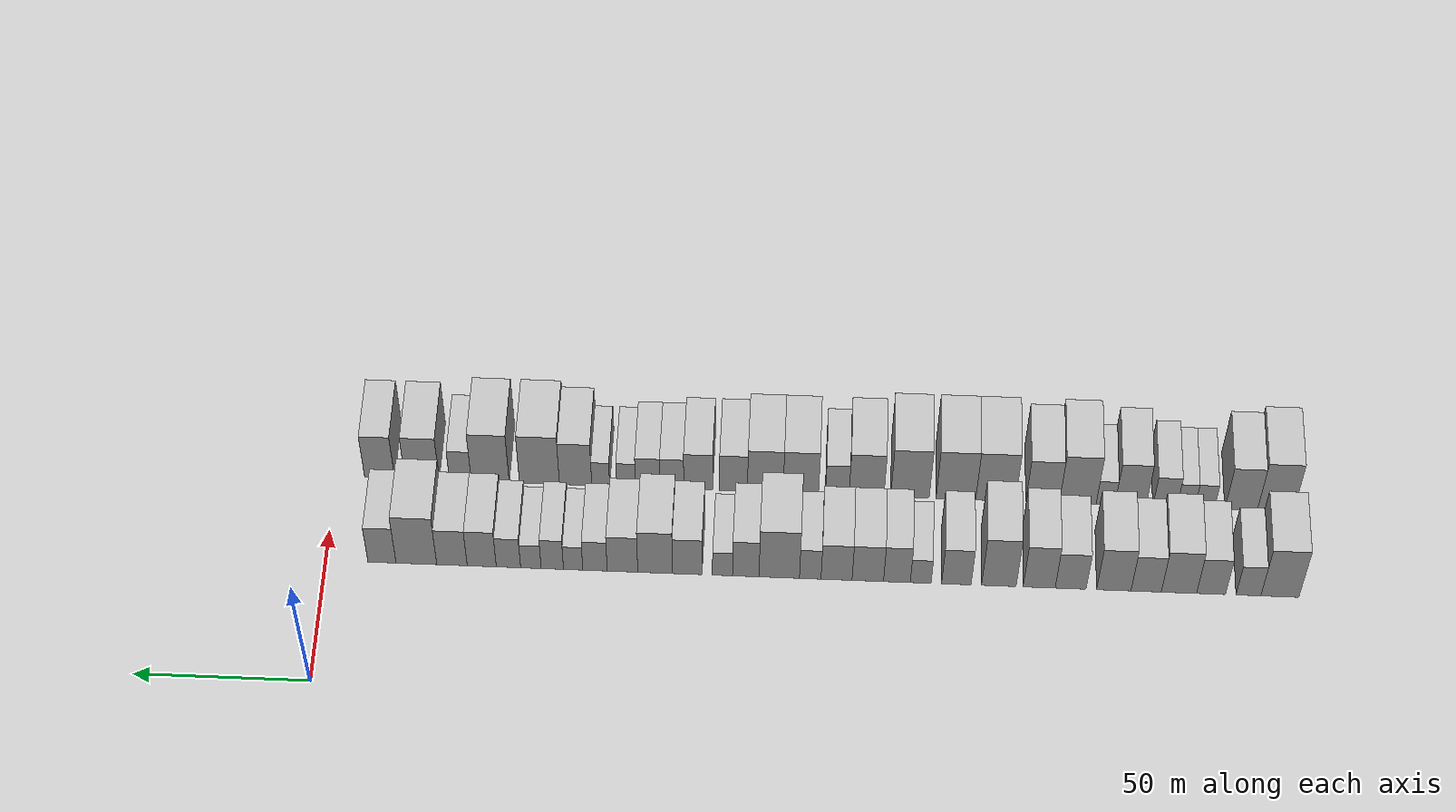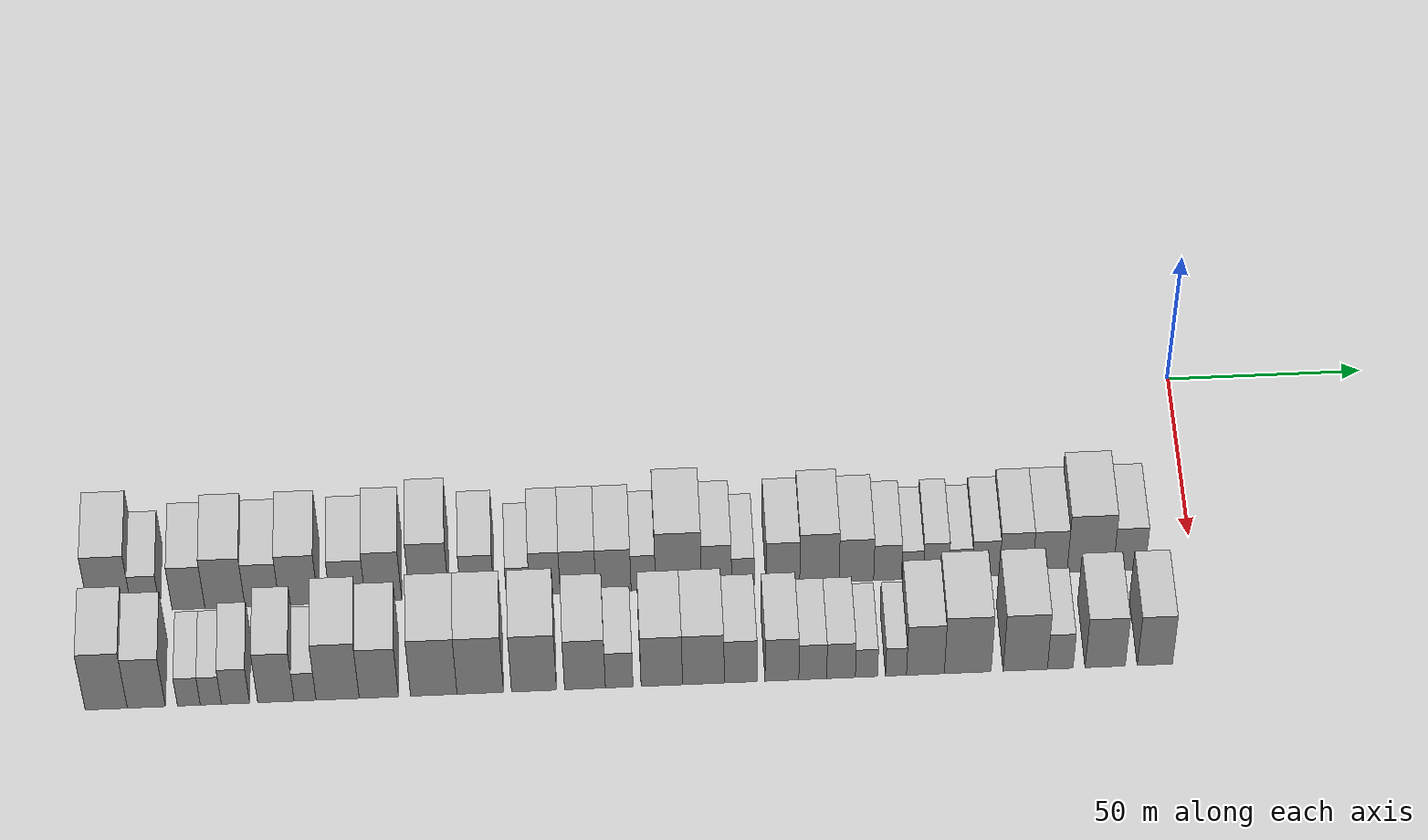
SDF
<sdf version="1.6">
 <world name="default">
  <model name="building_1">
   <static>1</static>
   <pose>50.0000 -272.6095 0 0.000000 0.000000 0.000000</pose>
   <link name="link">
    <pose>0 0 12.00 0 0 0</pose>
    <collision name="collision"><geometry><box><size>20.0000 10.7811 24.0000</size></box></geometry></collision>
    <visual name="visual">
     <cast_shadows>0</cast_shadows>
     <geometry><box><size>20.0000 10.7811 24.0000</size></box></geometry>
     <material>
      <script>
       <uri>model://HANNAS_wall/materials/scripts</uri>
       <uri>model://HANNAS_wall/materials/textures</uri>
       <name>vrc/HANNAS_wall</name>
      </script>
     </material>
    </visual>
   </link>
  </model>
  <model name="building_2">
   <static>1</static>
   <pose>50.0000 -263.6989 0 0.000000 0.000000 0.000000</pose>
   <link name="link">
    <pose>0 0 7.50 0 0 0</pose>
    <collision name="collision"><geometry><box><size>20.0000 7.0400 15.0000</size></box></geometry></collision>
    <visual name="visual">
     <cast_shadows>0</cast_shadows>
     <geometry><box><size>20.0000 7.0400 15.0000</size></box></geometry>
     <material>
      <script>
       <uri>model://HANNAS_wall/materials/scripts</uri>
       <uri>model://HANNAS_wall/materials/textures</uri>
       <name>vrc/HANNAS_wall</name>
      </script>
     </material>
    </visual>
   </link>
  </model>
  <model name="building_3">
   <static>1</static>
   <pose>50.0000 -253.0699 0 0.000000 0.000000 0.000000</pose>
   <link name="link">
    <pose>0 0 9.00 0 0 0</pose>
    <collision name="collision"><geometry><box><size>20.0000 8.2181 18.0000</size></box></geometry></collision>
    <visual name="visual">
     <cast_shadows>0</cast_shadows>
     <geometry><box><size>20.0000 8.2181 18.0000</size></box></geometry>
     <material>
      <script>
       <uri>model://HANNAS_wall/materials/scripts</uri>
       <uri>model://HANNAS_wall/materials/textures</uri>
       <name>vrc/HANNAS_wall</name>
      </script>
     </material>
    </visual>
   </link>
  </model>
  <model name="building_4">
   <static>1</static>
   <pose>50.0000 -243.9424 0 0.000000 0.000000 0.000000</pose>
   <link name="link">
    <pose>0 0 10.50 0 0 0</pose>
    <collision name="collision"><geometry><box><size>20.0000 10.0370 21.0000</size></box></geometry></collision>
    <visual name="visual">
     <cast_shadows>0</cast_shadows>
     <geometry><box><size>20.0000 10.0370 21.0000</size></box></geometry>
     <material>
      <script>
       <uri>model://HANNAS_wall/materials/scripts</uri>
       <uri>model://HANNAS_wall/materials/textures</uri>
       <name>vrc/HANNAS_wall</name>
      </script>
     </material>
    </visual>
   </link>
  </model>
  <model name="building_5">
   <static>1</static>
   <pose>50.0000 -234.6155 0 0.000000 0.000000 0.000000</pose>
   <link name="link">
    <pose>0 0 9.00 0 0 0</pose>
    <collision name="collision"><geometry><box><size>20.0000 8.6167 18.0000</size></box></geometry></collision>
    <visual name="visual">
     <cast_shadows>0</cast_shadows>
     <geometry><box><size>20.0000 8.6167 18.0000</size></box></geometry>
     <material>
      <script>
       <uri>model://HANNAS_wall/materials/scripts</uri>
       <uri>model://HANNAS_wall/materials/textures</uri>
       <name>vrc/HANNAS_wall</name>
      </script>
     </material>
    </visual>
   </link>
  </model>
  <model name="building_6">
   <static>1</static>
   <pose>50.0000 -225.4179 0 0.000000 0.000000 0.000000</pose>
   <link name="link">
    <pose>0 0 10.50 0 0 0</pose>
    <collision name="collision"><geometry><box><size>20.0000 9.7786 21.0000</size></box></geometry></collision>
    <visual name="visual">
     <cast_shadows>0</cast_shadows>
     <geometry><box><size>20.0000 9.7786 21.0000</size></box></geometry>
     <material>
      <script>
       <uri>model://HANNAS_wall/materials/scripts</uri>
       <uri>model://HANNAS_wall/materials/textures</uri>
       <name>vrc/HANNAS_wall</name>
      </script>
     </material>
    </visual>
   </link>
  </model>
  <model name="building_7">
   <static>1</static>
   <pose>50.0000 -213.1358 0 0.000000 0.000000 0.000000</pose>
   <link name="link">
    <pose>0 0 9.00 0 0 0</pose>
    <collision name="collision"><geometry><box><size>20.0000 8.7856 18.0000</size></box></geometry></collision>
    <visual name="visual">
     <cast_shadows>0</cast_shadows>
     <geometry><box><size>20.0000 8.7856 18.0000</size></box></geometry>
     <material>
      <script>
       <uri>model://HANNAS_wall/materials/scripts</uri>
       <uri>model://HANNAS_wall/materials/textures</uri>
       <name>vrc/HANNAS_wall</name>
      </script>
     </material>
    </visual>
   </link>
  </model>
  <model name="building_8">
   <static>1</static>
   <pose>50.0000 -204.1743 0 0.000000 0.000000 0.000000</pose>
   <link name="link">
    <pose>0 0 10.50 0 0 0</pose>
    <collision name="collision"><geometry><box><size>20.0000 9.1375 21.0000</size></box></geometry></collision>
    <visual name="visual">
     <cast_shadows>0</cast_shadows>
     <geometry><box><size>20.0000 9.1375 21.0000</size></box></geometry>
     <material>
      <script>
       <uri>model://HANNAS_wall/materials/scripts</uri>
       <uri>model://HANNAS_wall/materials/textures</uri>
       <name>vrc/HANNAS_wall</name>
      </script>
     </material>
    </visual>
   </link>
  </model>
  <model name="building_9">
   <static>1</static>
   <pose>50.0000 -192.6847 0 0.000000 0.000000 0.000000</pose>
   <link name="link">
    <pose>0 0 12.00 0 0 0</pose>
    <collision name="collision"><geometry><box><size>20.0000 9.8418 24.0000</size></box></geometry></collision>
    <visual name="visual">
     <cast_shadows>0</cast_shadows>
     <geometry><box><size>20.0000 9.8418 24.0000</size></box></geometry>
     <material>
      <script>
       <uri>model://HANNAS_wall/materials/scripts</uri>
       <uri>model://HANNAS_wall/materials/textures</uri>
       <name>vrc/HANNAS_wall</name>
      </script>
     </material>
    </visual>
   </link>
  </model>
  <model name="building_10">
   <static>1</static>
   <pose>50.0000 -180.5605 0 0.000000 0.000000 0.000000</pose>
   <link name="link">
    <pose>0 0 9.00 0 0 0</pose>
    <collision name="collision"><geometry><box><size>20.0000 8.4065 18.0000</size></box></geometry></collision>
    <visual name="visual">
     <cast_shadows>0</cast_shadows>
     <geometry><box><size>20.0000 8.4065 18.0000</size></box></geometry>
     <material>
      <script>
       <uri>model://HANNAS_wall/materials/scripts</uri>
       <uri>model://HANNAS_wall/materials/textures</uri>
       <name>vrc/HANNAS_wall</name>
      </script>
     </material>
    </visual>
   </link>
  </model>
  <model name="building_11">
   <static>1</static>
   <pose>50.0000 -170.3896 0 0.000000 0.000000 0.000000</pose>
   <link name="link">
    <pose>0 0 6.00 0 0 0</pose>
    <collision name="collision"><geometry><box><size>20.0000 5.9353 12.0000</size></box></geometry></collision>
    <visual name="visual">
     <cast_shadows>0</cast_shadows>
     <geometry><box><size>20.0000 5.9353 12.0000</size></box></geometry>
     <material>
      <script>
       <uri>model://HANNAS_wall/materials/scripts</uri>
       <uri>model://HANNAS_wall/materials/textures</uri>
       <name>vrc/HANNAS_wall</name>
      </script>
     </material>
    </visual>
   </link>
  </model>
  <model name="building_12">
   <static>1</static>
   <pose>50.0000 -163.6053 0 0.000000 0.000000 0.000000</pose>
   <link name="link">
    <pose>0 0 9.00 0 0 0</pose>
    <collision name="collision"><geometry><box><size>20.0000 7.6333 18.0000</size></box></geometry></collision>
    <visual name="visual">
     <cast_shadows>0</cast_shadows>
     <geometry><box><size>20.0000 7.6333 18.0000</size></box></geometry>
     <material>
      <script>
       <uri>model://HANNAS_wall/materials/scripts</uri>
       <uri>model://HANNAS_wall/materials/textures</uri>
       <name>vrc/HANNAS_wall</name>
      </script>
     </material>
    </visual>
   </link>
  </model>
  <model name="building_13">
   <static>1</static>
   <pose>50.0000 -155.2934 0 0.000000 0.000000 0.000000</pose>
   <link name="link">
    <pose>0 0 9.00 0 0 0</pose>
    <collision name="collision"><geometry><box><size>20.0000 8.9907 18.0000</size></box></geometry></collision>
    <visual name="visual">
     <cast_shadows>0</cast_shadows>
     <geometry><box><size>20.0000 8.9907 18.0000</size></box></geometry>
     <material>
      <script>
       <uri>model://HANNAS_wall/materials/scripts</uri>
       <uri>model://HANNAS_wall/materials/textures</uri>
       <name>vrc/HANNAS_wall</name>
      </script>
     </material>
    </visual>
   </link>
  </model>
  <model name="building_14">
   <static>1</static>
   <pose>50.0000 -146.3652 0 0.000000 0.000000 0.000000</pose>
   <link name="link">
    <pose>0 0 9.00 0 0 0</pose>
    <collision name="collision"><geometry><box><size>20.0000 8.8655 18.0000</size></box></geometry></collision>
    <visual name="visual">
     <cast_shadows>0</cast_shadows>
     <geometry><box><size>20.0000 8.8655 18.0000</size></box></geometry>
     <material>
      <script>
       <uri>model://HANNAS_wall/materials/scripts</uri>
       <uri>model://HANNAS_wall/materials/textures</uri>
       <name>vrc/HANNAS_wall</name>
      </script>
     </material>
    </visual>
   </link>
  </model>
  <model name="building_15">
   <static>1</static>
   <pose>50.0000 -138.8571 0 0.000000 0.000000 0.000000</pose>
   <link name="link">
    <pose>0 0 7.50 0 0 0</pose>
    <collision name="collision"><geometry><box><size>20.0000 6.1508 15.0000</size></box></geometry></collision>
    <visual name="visual">
     <cast_shadows>0</cast_shadows>
     <geometry><box><size>20.0000 6.1508 15.0000</size></box></geometry>
     <material>
      <script>
       <uri>model://HANNAS_wall/materials/scripts</uri>
       <uri>model://HANNAS_wall/materials/textures</uri>
       <name>vrc/HANNAS_wall</name>
      </script>
     </material>
    </visual>
   </link>
  </model>
  <model name="building_16">
   <static>1</static>
   <pose>50.0000 -130.0185 0 0.000000 0.000000 0.000000</pose>
   <link name="link">
    <pose>0 0 12.00 0 0 0</pose>
    <collision name="collision"><geometry><box><size>20.0000 11.5264 24.0000</size></box></geometry></collision>
    <visual name="visual">
     <cast_shadows>0</cast_shadows>
     <geometry><box><size>20.0000 11.5264 24.0000</size></box></geometry>
     <material>
      <script>
       <uri>model://HANNAS_wall/materials/scripts</uri>
       <uri>model://HANNAS_wall/materials/textures</uri>
       <name>vrc/HANNAS_wall</name>
      </script>
     </material>
    </visual>
   </link>
  </model>
  <model name="building_17">
   <static>1</static>
   <pose>50.0000 -120.4466 0 0.000000 0.000000 0.000000</pose>
   <link name="link">
    <pose>0 0 9.00 0 0 0</pose>
    <collision name="collision"><geometry><box><size>20.0000 7.6174 18.0000</size></box></geometry></collision>
    <visual name="visual">
     <cast_shadows>0</cast_shadows>
     <geometry><box><size>20.0000 7.6174 18.0000</size></box></geometry>
     <material>
      <script>
       <uri>model://HANNAS_wall/materials/scripts</uri>
       <uri>model://HANNAS_wall/materials/textures</uri>
       <name>vrc/HANNAS_wall</name>
      </script>
     </material>
    </visual>
   </link>
  </model>
  <model name="building_18">
   <static>1</static>
   <pose>50.0000 -113.7780 0 0.000000 0.000000 0.000000</pose>
   <link name="link">
    <pose>0 0 6.00 0 0 0</pose>
    <collision name="collision"><geometry><box><size>20.0000 5.7198 12.0000</size></box></geometry></collision>
    <visual name="visual">
     <cast_shadows>0</cast_shadows>
     <geometry><box><size>20.0000 5.7198 12.0000</size></box></geometry>
     <material>
      <script>
       <uri>model://HANNAS_wall/materials/scripts</uri>
       <uri>model://HANNAS_wall/materials/textures</uri>
       <name>vrc/HANNAS_wall</name>
      </script>
     </material>
    </visual>
   </link>
  </model>
  <model name="building_19">
   <static>1</static>
   <pose>50.0000 -103.6759 0 0.000000 0.000000 0.000000</pose>
   <link name="link">
    <pose>0 0 9.00 0 0 0</pose>
    <collision name="collision"><geometry><box><size>20.0000 8.4845 18.0000</size></box></geometry></collision>
    <visual name="visual">
     <cast_shadows>0</cast_shadows>
     <geometry><box><size>20.0000 8.4845 18.0000</size></box></geometry>
     <material>
      <script>
       <uri>model://HANNAS_wall/materials/scripts</uri>
       <uri>model://HANNAS_wall/materials/textures</uri>
       <name>vrc/HANNAS_wall</name>
      </script>
     </material>
    </visual>
   </link>
  </model>
  <model name="building_20">
   <static>1</static>
   <pose>50.0000 -94.4692 0 0.000000 0.000000 0.000000</pose>
   <link name="link">
    <pose>0 0 10.50 0 0 0</pose>
    <collision name="collision"><geometry><box><size>20.0000 9.9289 21.0000</size></box></geometry></collision>
    <visual name="visual">
     <cast_shadows>0</cast_shadows>
     <geometry><box><size>20.0000 9.9289 21.0000</size></box></geometry>
     <material>
      <script>
       <uri>model://HANNAS_wall/materials/scripts</uri>
       <uri>model://HANNAS_wall/materials/textures</uri>
       <name>vrc/HANNAS_wall</name>
      </script>
     </material>
    </visual>
   </link>
  </model>
  <model name="building_21">
   <static>1</static>
   <pose>50.0000 -85.1361 0 0.000000 0.000000 0.000000</pose>
   <link name="link">
    <pose>0 0 9.00 0 0 0</pose>
    <collision name="collision"><geometry><box><size>20.0000 8.7373 18.0000</size></box></geometry></collision>
    <visual name="visual">
     <cast_shadows>0</cast_shadows>
     <geometry><box><size>20.0000 8.7373 18.0000</size></box></geometry>
     <material>
      <script>
       <uri>model://HANNAS_wall/materials/scripts</uri>
       <uri>model://HANNAS_wall/materials/textures</uri>
       <name>vrc/HANNAS_wall</name>
      </script>
     </material>
    </visual>
   </link>
  </model>
  <model name="building_22">
   <static>1</static>
   <pose>50.0000 -77.2666 0 0.000000 0.000000 0.000000</pose>
   <link name="link">
    <pose>0 0 7.50 0 0 0</pose>
    <collision name="collision"><geometry><box><size>20.0000 7.0017 15.0000</size></box></geometry></collision>
    <visual name="visual">
     <cast_shadows>0</cast_shadows>
     <geometry><box><size>20.0000 7.0017 15.0000</size></box></geometry>
     <material>
      <script>
       <uri>model://HANNAS_wall/materials/scripts</uri>
       <uri>model://HANNAS_wall/materials/textures</uri>
       <name>vrc/HANNAS_wall</name>
      </script>
     </material>
    </visual>
   </link>
  </model>
  <model name="building_23">
   <static>1</static>
   <pose>50.0000 -71.0025 0 0.000000 0.000000 0.000000</pose>
   <link name="link">
    <pose>0 0 6.00 0 0 0</pose>
    <collision name="collision"><geometry><box><size>20.0000 5.5265 12.0000</size></box></geometry></collision>
    <visual name="visual">
     <cast_shadows>0</cast_shadows>
     <geometry><box><size>20.0000 5.5265 12.0000</size></box></geometry>
     <material>
      <script>
       <uri>model://HANNAS_wall/materials/scripts</uri>
       <uri>model://HANNAS_wall/materials/textures</uri>
       <name>vrc/HANNAS_wall</name>
      </script>
     </material>
    </visual>
   </link>
  </model>
  <model name="building_24">
   <static>1</static>
   <pose>50.0000 -65.0267 0 0.000000 0.000000 0.000000</pose>
   <link name="link">
    <pose>0 0 7.50 0 0 0</pose>
    <collision name="collision"><geometry><box><size>20.0000 6.4250 15.0000</size></box></geometry></collision>
    <visual name="visual">
     <cast_shadows>0</cast_shadows>
     <geometry><box><size>20.0000 6.4250 15.0000</size></box></geometry>
     <material>
      <script>
       <uri>model://HANNAS_wall/materials/scripts</uri>
       <uri>model://HANNAS_wall/materials/textures</uri>
       <name>vrc/HANNAS_wall</name>
      </script>
     </material>
    </visual>
   </link>
  </model>
  <model name="building_25">
   <static>1</static>
   <pose>50.0000 -58.8759 0 0.000000 0.000000 0.000000</pose>
   <link name="link">
    <pose>0 0 6.00 0 0 0</pose>
    <collision name="collision"><geometry><box><size>20.0000 5.8766 12.0000</size></box></geometry></collision>
    <visual name="visual">
     <cast_shadows>0</cast_shadows>
     <geometry><box><size>20.0000 5.8766 12.0000</size></box></geometry>
     <material>
      <script>
       <uri>model://HANNAS_wall/materials/scripts</uri>
       <uri>model://HANNAS_wall/materials/textures</uri>
       <name>vrc/HANNAS_wall</name>
      </script>
     </material>
    </visual>
   </link>
  </model>
  <model name="building_26">
   <static>1</static>
   <pose>50.0000 -52.4413 0 0.000000 0.000000 0.000000</pose>
   <link name="link">
    <pose>0 0 7.50 0 0 0</pose>
    <collision name="collision"><geometry><box><size>20.0000 6.9926 15.0000</size></box></geometry></collision>
    <visual name="visual">
     <cast_shadows>0</cast_shadows>
     <geometry><box><size>20.0000 6.9926 15.0000</size></box></geometry>
     <material>
      <script>
       <uri>model://HANNAS_wall/materials/scripts</uri>
       <uri>model://HANNAS_wall/materials/textures</uri>
       <name>vrc/HANNAS_wall</name>
      </script>
     </material>
    </visual>
   </link>
  </model>
  <model name="building_27">
   <static>1</static>
   <pose>50.0000 -44.7642 0 0.000000 0.000000 0.000000</pose>
   <link name="link">
    <pose>0 0 9.00 0 0 0</pose>
    <collision name="collision"><geometry><box><size>20.0000 8.3615 18.0000</size></box></geometry></collision>
    <visual name="visual">
     <cast_shadows>0</cast_shadows>
     <geometry><box><size>20.0000 8.3615 18.0000</size></box></geometry>
     <material>
      <script>
       <uri>model://HANNAS_wall/materials/scripts</uri>
       <uri>model://HANNAS_wall/materials/textures</uri>
       <name>vrc/HANNAS_wall</name>
      </script>
     </material>
    </visual>
   </link>
  </model>
  <model name="building_28">
   <static>1</static>
   <pose>50.0000 -36.2077 0 0.000000 0.000000 0.000000</pose>
   <link name="link">
    <pose>0 0 9.00 0 0 0</pose>
    <collision name="collision"><geometry><box><size>20.0000 8.7515 18.0000</size></box></geometry></collision>
    <visual name="visual">
     <cast_shadows>0</cast_shadows>
     <geometry><box><size>20.0000 8.7515 18.0000</size></box></geometry>
     <material>
      <script>
       <uri>model://HANNAS_wall/materials/scripts</uri>
       <uri>model://HANNAS_wall/materials/textures</uri>
       <name>vrc/HANNAS_wall</name>
      </script>
     </material>
    </visual>
   </link>
  </model>
  <model name="building_29">
   <static>1</static>
   <pose>50.0000 -25.9818 0 0.000000 0.000000 0.000000</pose>
   <link name="link">
    <pose>0 0 12.00 0 0 0</pose>
    <collision name="collision"><geometry><box><size>20.0000 11.7005 24.0000</size></box></geometry></collision>
    <visual name="visual">
     <cast_shadows>0</cast_shadows>
     <geometry><box><size>20.0000 11.7005 24.0000</size></box></geometry>
     <material>
      <script>
       <uri>model://HANNAS_wall/materials/scripts</uri>
       <uri>model://HANNAS_wall/materials/textures</uri>
       <name>vrc/HANNAS_wall</name>
      </script>
     </material>
    </visual>
   </link>
  </model>
  <model name="building_30">
   <static>1</static>
   <pose>50.0000 -16.0936 0 0.000000 0.000000 0.000000</pose>
   <link name="link">
    <pose>0 0 9.00 0 0 0</pose>
    <collision name="collision"><geometry><box><size>20.0000 8.0759 18.0000</size></box></geometry></collision>
    <visual name="visual">
     <cast_shadows>0</cast_shadows>
     <geometry><box><size>20.0000 8.0759 18.0000</size></box></geometry>
     <material>
      <script>
       <uri>model://HANNAS_wall/materials/scripts</uri>
       <uri>model://HANNAS_wall/materials/textures</uri>
       <name>vrc/HANNAS_wall</name>
      </script>
     </material>
    </visual>
   </link>
  </model>
  <model name="building_59">
   <static>1</static>
   <pose>79.0000 -272.8088 0 0.000000 0.000000 0.000000</pose>
   <link name="link">
    <pose>0 0 12.00 0 0 0</pose>
    <collision name="collision"><geometry><box><size>20.0000 10.3825 24.0000</size></box></geometry></collision>
    <visual name="visual">
     <cast_shadows>0</cast_shadows>
     <geometry><box><size>20.0000 10.3825 24.0000</size></box></geometry>
     <material>
      <script>
       <uri>model://HANNAS_wall/materials/scripts</uri>
       <uri>model://HANNAS_wall/materials/textures</uri>
       <name>vrc/HANNAS_wall</name>
      </script>
     </material>
    </visual>
   </link>
  </model>
  <model name="building_60">
   <static>1</static>
   <pose>79.0000 -262.9239 0 0.000000 0.000000 0.000000</pose>
   <link name="link">
    <pose>0 0 10.50 0 0 0</pose>
    <collision name="collision"><geometry><box><size>20.0000 9.3872 21.0000</size></box></geometry></collision>
    <visual name="visual">
     <cast_shadows>0</cast_shadows>
     <geometry><box><size>20.0000 9.3872 21.0000</size></box></geometry>
     <material>
      <script>
       <uri>model://HANNAS_wall/materials/scripts</uri>
       <uri>model://HANNAS_wall/materials/textures</uri>
       <name>vrc/HANNAS_wall</name>
      </script>
     </material>
    </visual>
   </link>
  </model>
  <model name="building_61">
   <static>1</static>
   <pose>79.0000 -252.4113 0 0.000000 0.000000 0.000000</pose>
   <link name="link">
    <pose>0 0 6.00 0 0 0</pose>
    <collision name="collision"><geometry><box><size>20.0000 5.6380 12.0000</size></box></geometry></collision>
    <visual name="visual">
     <cast_shadows>0</cast_shadows>
     <geometry><box><size>20.0000 5.6380 12.0000</size></box></geometry>
     <material>
      <script>
       <uri>model://HANNAS_wall/materials/scripts</uri>
       <uri>model://HANNAS_wall/materials/textures</uri>
       <name>vrc/HANNAS_wall</name>
      </script>
     </material>
    </visual>
   </link>
  </model>
  <model name="building_62">
   <static>1</static>
   <pose>79.0000 -246.9912 0 0.000000 0.000000 0.000000</pose>
   <link name="link">
    <pose>0 0 6.00 0 0 0</pose>
    <collision name="collision"><geometry><box><size>20.0000 5.2023 12.0000</size></box></geometry></collision>
    <visual name="visual">
     <cast_shadows>0</cast_shadows>
     <geometry><box><size>20.0000 5.2023 12.0000</size></box></geometry>
     <material>
      <script>
       <uri>model://HANNAS_wall/materials/scripts</uri>
       <uri>model://HANNAS_wall/materials/textures</uri>
       <name>vrc/HANNAS_wall</name>
      </script>
     </material>
    </visual>
   </link>
  </model>
  <model name="building_63">
   <static>1</static>
   <pose>79.0000 -240.9086 0 0.000000 0.000000 0.000000</pose>
   <link name="link">
    <pose>0 0 7.50 0 0 0</pose>
    <collision name="collision"><geometry><box><size>20.0000 6.9629 15.0000</size></box></geometry></collision>
    <visual name="visual">
     <cast_shadows>0</cast_shadows>
     <geometry><box><size>20.0000 6.9629 15.0000</size></box></geometry>
     <material>
      <script>
       <uri>model://HANNAS_wall/materials/scripts</uri>
       <uri>model://HANNAS_wall/materials/textures</uri>
       <name>vrc/HANNAS_wall</name>
      </script>
     </material>
    </visual>
   </link>
  </model>
  <model name="building_64">
   <static>1</static>
   <pose>79.0000 -230.9350 0 0.000000 0.000000 0.000000</pose>
   <link name="link">
    <pose>0 0 10.50 0 0 0</pose>
    <collision name="collision"><geometry><box><size>20.0000 8.9843 21.0000</size></box></geometry></collision>
    <visual name="visual">
     <cast_shadows>0</cast_shadows>
     <geometry><box><size>20.0000 8.9843 21.0000</size></box></geometry>
     <material>
      <script>
       <uri>model://HANNAS_wall/materials/scripts</uri>
       <uri>model://HANNAS_wall/materials/textures</uri>
       <name>vrc/HANNAS_wall</name>
      </script>
     </material>
    </visual>
   </link>
  </model>
  <model name="building_65">
   <static>1</static>
   <pose>79.0000 -223.7182 0 0.000000 0.000000 0.000000</pose>
   <link name="link">
    <pose>0 0 6.00 0 0 0</pose>
    <collision name="collision"><geometry><box><size>20.0000 5.4493 12.0000</size></box></geometry></collision>
    <visual name="visual">
     <cast_shadows>0</cast_shadows>
     <geometry><box><size>20.0000 5.4493 12.0000</size></box></geometry>
     <material>
      <script>
       <uri>model://HANNAS_wall/materials/scripts</uri>
       <uri>model://HANNAS_wall/materials/textures</uri>
       <name>vrc/HANNAS_wall</name>
      </script>
     </material>
    </visual>
   </link>
  </model>
  <model name="building_66">
   <static>1</static>
   <pose>79.0000 -215.6685 0 0.000000 0.000000 0.000000</pose>
   <link name="link">
    <pose>0 0 12.00 0 0 0</pose>
    <collision name="collision"><geometry><box><size>20.0000 10.6502 24.0000</size></box></geometry></collision>
    <visual name="visual">
     <cast_shadows>0</cast_shadows>
     <geometry><box><size>20.0000 10.6502 24.0000</size></box></geometry>
     <material>
      <script>
       <uri>model://HANNAS_wall/materials/scripts</uri>
       <uri>model://HANNAS_wall/materials/textures</uri>
       <name>vrc/HANNAS_wall</name>
      </script>
     </material>
    </visual>
   </link>
  </model>
  <model name="building_67">
   <static>1</static>
   <pose>79.0000 -205.4831 0 0.000000 0.000000 0.000000</pose>
   <link name="link">
    <pose>0 0 10.50 0 0 0</pose>
    <collision name="collision"><geometry><box><size>20.0000 9.7206 21.0000</size></box></geometry></collision>
    <visual name="visual">
     <cast_shadows>0</cast_shadows>
     <geometry><box><size>20.0000 9.7206 21.0000</size></box></geometry>
     <material>
      <script>
       <uri>model://HANNAS_wall/materials/scripts</uri>
       <uri>model://HANNAS_wall/materials/textures</uri>
       <name>vrc/HANNAS_wall</name>
      </script>
     </material>
    </visual>
   </link>
  </model>
  <model name="building_68">
   <static>1</static>
   <pose>79.0000 -191.8715 0 0.000000 0.000000 0.000000</pose>
   <link name="link">
    <pose>0 0 12.00 0 0 0</pose>
    <collision name="collision"><geometry><box><size>20.0000 11.5026 24.0000</size></box></geometry></collision>
    <visual name="visual">
     <cast_shadows>0</cast_shadows>
     <geometry><box><size>20.0000 11.5026 24.0000</size></box></geometry>
     <material>
      <script>
       <uri>model://HANNAS_wall/materials/scripts</uri>
       <uri>model://HANNAS_wall/materials/textures</uri>
       <name>vrc/HANNAS_wall</name>
      </script>
     </material>
    </visual>
   </link>
  </model>
  <model name="building_69">
   <static>1</static>
   <pose>79.0000 -180.3687 0 0.000000 0.000000 0.000000</pose>
   <link name="link">
    <pose>0 0 12.00 0 0 0</pose>
    <collision name="collision"><geometry><box><size>20.0000 11.5030 24.0000</size></box></geometry></collision>
    <visual name="visual">
     <cast_shadows>0</cast_shadows>
     <geometry><box><size>20.0000 11.5030 24.0000</size></box></geometry>
     <material>
      <script>
       <uri>model://HANNAS_wall/materials/scripts</uri>
       <uri>model://HANNAS_wall/materials/textures</uri>
       <name>vrc/HANNAS_wall</name>
      </script>
     </material>
    </visual>
   </link>
  </model>
  <model name="building_70">
   <static>1</static>
   <pose>79.0000 -167.0423 0 0.000000 0.000000 0.000000</pose>
   <link name="link">
    <pose>0 0 12.00 0 0 0</pose>
    <collision name="collision"><geometry><box><size>20.0000 11.1497 24.0000</size></box></geometry></collision>
    <visual name="visual">
     <cast_shadows>0</cast_shadows>
     <geometry><box><size>20.0000 11.1497 24.0000</size></box></geometry>
     <material>
      <script>
       <uri>model://HANNAS_wall/materials/scripts</uri>
       <uri>model://HANNAS_wall/materials/textures</uri>
       <name>vrc/HANNAS_wall</name>
      </script>
     </material>
    </visual>
   </link>
  </model>
  <model name="building_71">
   <static>1</static>
   <pose>79.0000 -154.4035 0 0.000000 0.000000 0.000000</pose>
   <link name="link">
    <pose>0 0 10.50 0 0 0</pose>
    <collision name="collision"><geometry><box><size>20.0000 10.1279 21.0000</size></box></geometry></collision>
    <visual name="visual">
     <cast_shadows>0</cast_shadows>
     <geometry><box><size>20.0000 10.1279 21.0000</size></box></geometry>
     <material>
      <script>
       <uri>model://HANNAS_wall/materials/scripts</uri>
       <uri>model://HANNAS_wall/materials/textures</uri>
       <name>vrc/HANNAS_wall</name>
      </script>
     </material>
    </visual>
   </link>
  </model>
  <model name="building_72">
   <static>1</static>
   <pose>79.0000 -145.9096 0 0.000000 0.000000 0.000000</pose>
   <link name="link">
    <pose>0 0 7.50 0 0 0</pose>
    <collision name="collision"><geometry><box><size>20.0000 6.8599 15.0000</size></box></geometry></collision>
    <visual name="visual">
     <cast_shadows>0</cast_shadows>
     <geometry><box><size>20.0000 6.8599 15.0000</size></box></geometry>
     <material>
      <script>
       <uri>model://HANNAS_wall/materials/scripts</uri>
       <uri>model://HANNAS_wall/materials/textures</uri>
       <name>vrc/HANNAS_wall</name>
      </script>
     </material>
    </visual>
   </link>
  </model>
  <model name="building_73">
   <static>1</static>
   <pose>79.0000 -135.3454 0 0.000000 0.000000 0.000000</pose>
   <link name="link">
    <pose>0 0 10.50 0 0 0</pose>
    <collision name="collision"><geometry><box><size>20.0000 10.2684 21.0000</size></box></geometry></collision>
    <visual name="visual">
     <cast_shadows>0</cast_shadows>
     <geometry><box><size>20.0000 10.2684 21.0000</size></box></geometry>
     <material>
      <script>
       <uri>model://HANNAS_wall/materials/scripts</uri>
       <uri>model://HANNAS_wall/materials/textures</uri>
       <name>vrc/HANNAS_wall</name>
      </script>
     </material>
    </visual>
   </link>
  </model>
  <model name="building_74">
   <static>1</static>
   <pose>79.0000 -125.0207 0 0.000000 0.000000 0.000000</pose>
   <link name="link">
    <pose>0 0 10.50 0 0 0</pose>
    <collision name="collision"><geometry><box><size>20.0000 10.3811 21.0000</size></box></geometry></collision>
    <visual name="visual">
     <cast_shadows>0</cast_shadows>
     <geometry><box><size>20.0000 10.3811 21.0000</size></box></geometry>
     <material>
      <script>
       <uri>model://HANNAS_wall/materials/scripts</uri>
       <uri>model://HANNAS_wall/materials/textures</uri>
       <name>vrc/HANNAS_wall</name>
      </script>
     </material>
    </visual>
   </link>
  </model>
  <model name="building_75">
   <static>1</static>
   <pose>79.0000 -115.7561 0 0.000000 0.000000 0.000000</pose>
   <link name="link">
    <pose>0 0 9.00 0 0 0</pose>
    <collision name="collision"><geometry><box><size>20.0000 8.1482 18.0000</size></box></geometry></collision>
    <visual name="visual">
     <cast_shadows>0</cast_shadows>
     <geometry><box><size>20.0000 8.1482 18.0000</size></box></geometry>
     <material>
      <script>
       <uri>model://HANNAS_wall/materials/scripts</uri>
       <uri>model://HANNAS_wall/materials/textures</uri>
       <name>vrc/HANNAS_wall</name>
      </script>
     </material>
    </visual>
   </link>
  </model>
  <model name="building_76">
   <static>1</static>
   <pose>79.0000 -105.4864 0 0.000000 0.000000 0.000000</pose>
   <link name="link">
    <pose>0 0 9.00 0 0 0</pose>
    <collision name="collision"><geometry><box><size>20.0000 8.3912 18.0000</size></box></geometry></collision>
    <visual name="visual">
     <cast_shadows>0</cast_shadows>
     <geometry><box><size>20.0000 8.3912 18.0000</size></box></geometry>
     <material>
      <script>
       <uri>model://HANNAS_wall/materials/scripts</uri>
       <uri>model://HANNAS_wall/materials/textures</uri>
       <name>vrc/HANNAS_wall</name>
      </script>
     </material>
    </visual>
   </link>
  </model>
  <model name="building_77">
   <static>1</static>
   <pose>79.0000 -97.8205 0 0.000000 0.000000 0.000000</pose>
   <link name="link">
    <pose>0 0 7.50 0 0 0</pose>
    <collision name="collision"><geometry><box><size>20.0000 6.9406 15.0000</size></box></geometry></collision>
    <visual name="visual">
     <cast_shadows>0</cast_shadows>
     <geometry><box><size>20.0000 6.9406 15.0000</size></box></geometry>
     <material>
      <script>
       <uri>model://HANNAS_wall/materials/scripts</uri>
       <uri>model://HANNAS_wall/materials/textures</uri>
       <name>vrc/HANNAS_wall</name>
      </script>
     </material>
    </visual>
   </link>
  </model>
  <model name="building_78">
   <static>1</static>
   <pose>79.0000 -90.7852 0 0.000000 0.000000 0.000000</pose>
   <link name="link">
    <pose>0 0 7.50 0 0 0</pose>
    <collision name="collision"><geometry><box><size>20.0000 7.1300 15.0000</size></box></geometry></collision>
    <visual name="visual">
     <cast_shadows>0</cast_shadows>
     <geometry><box><size>20.0000 7.1300 15.0000</size></box></geometry>
     <material>
      <script>
       <uri>model://HANNAS_wall/materials/scripts</uri>
       <uri>model://HANNAS_wall/materials/textures</uri>
       <name>vrc/HANNAS_wall</name>
      </script>
     </material>
    </visual>
   </link>
  </model>
  <model name="building_79">
   <static>1</static>
   <pose>79.0000 -84.4620 0 0.000000 0.000000 0.000000</pose>
   <link name="link">
    <pose>0 0 6.00 0 0 0</pose>
    <collision name="collision"><geometry><box><size>20.0000 5.5164 12.0000</size></box></geometry></collision>
    <visual name="visual">
     <cast_shadows>0</cast_shadows>
     <geometry><box><size>20.0000 5.5164 12.0000</size></box></geometry>
     <material>
      <script>
       <uri>model://HANNAS_wall/materials/scripts</uri>
       <uri>model://HANNAS_wall/materials/textures</uri>
       <name>vrc/HANNAS_wall</name>
      </script>
     </material>
    </visual>
   </link>
  </model>
  <model name="building_80">
   <static>1</static>
   <pose>79.0000 -77.0946 0 0.000000 0.000000 0.000000</pose>
   <link name="link">
    <pose>0 0 6.00 0 0 0</pose>
    <collision name="collision"><geometry><box><size>20.0000 5.2186 12.0000</size></box></geometry></collision>
    <visual name="visual">
     <cast_shadows>0</cast_shadows>
     <geometry><box><size>20.0000 5.2186 12.0000</size></box></geometry>
     <material>
      <script>
       <uri>model://HANNAS_wall/materials/scripts</uri>
       <uri>model://HANNAS_wall/materials/textures</uri>
       <name>vrc/HANNAS_wall</name>
      </script>
     </material>
    </visual>
   </link>
  </model>
  <model name="building_81">
   <static>1</static>
   <pose>79.0000 -69.7653 0 0.000000 0.000000 0.000000</pose>
   <link name="link">
    <pose>0 0 10.50 0 0 0</pose>
    <collision name="collision"><geometry><box><size>20.0000 9.4399 21.0000</size></box></geometry></collision>
    <visual name="visual">
     <cast_shadows>0</cast_shadows>
     <geometry><box><size>20.0000 9.4399 21.0000</size></box></geometry>
     <material>
      <script>
       <uri>model://HANNAS_wall/materials/scripts</uri>
       <uri>model://HANNAS_wall/materials/textures</uri>
       <name>vrc/HANNAS_wall</name>
      </script>
     </material>
    </visual>
   </link>
  </model>
  <model name="building_82">
   <static>1</static>
   <pose>79.0000 -59.2188 0 0.000000 0.000000 0.000000</pose>
   <link name="link">
    <pose>0 0 12.00 0 0 0</pose>
    <collision name="collision"><geometry><box><size>20.0000 11.6531 24.0000</size></box></geometry></collision>
    <visual name="visual">
     <cast_shadows>0</cast_shadows>
     <geometry><box><size>20.0000 11.6531 24.0000</size></box></geometry>
     <material>
      <script>
       <uri>model://HANNAS_wall/materials/scripts</uri>
       <uri>model://HANNAS_wall/materials/textures</uri>
       <name>vrc/HANNAS_wall</name>
      </script>
     </material>
    </visual>
   </link>
  </model>
  <model name="building_83">
   <static>1</static>
   <pose>79.0000 -44.8573 0 0.000000 0.000000 0.000000</pose>
   <link name="link">
    <pose>0 0 12.00 0 0 0</pose>
    <collision name="collision"><geometry><box><size>20.0000 11.0700 24.0000</size></box></geometry></collision>
    <visual name="visual">
     <cast_shadows>0</cast_shadows>
     <geometry><box><size>20.0000 11.0700 24.0000</size></box></geometry>
     <material>
      <script>
       <uri>model://HANNAS_wall/materials/scripts</uri>
       <uri>model://HANNAS_wall/materials/textures</uri>
       <name>vrc/HANNAS_wall</name>
      </script>
     </material>
    </visual>
   </link>
  </model>
  <model name="building_84">
   <static>1</static>
   <pose>79.0000 -36.1312 0 0.000000 0.000000 0.000000</pose>
   <link name="link">
    <pose>0 0 7.50 0 0 0</pose>
    <collision name="collision"><geometry><box><size>20.0000 6.3822 15.0000</size></box></geometry></collision>
    <visual name="visual">
     <cast_shadows>0</cast_shadows>
     <geometry><box><size>20.0000 6.3822 15.0000</size></box></geometry>
     <material>
      <script>
       <uri>model://HANNAS_wall/materials/scripts</uri>
       <uri>model://HANNAS_wall/materials/textures</uri>
       <name>vrc/HANNAS_wall</name>
      </script>
     </material>
    </visual>
   </link>
  </model>
  <model name="building_85">
   <static>1</static>
   <pose>79.0000 -24.9234 0 0.000000 0.000000 0.000000</pose>
   <link name="link">
    <pose>0 0 10.50 0 0 0</pose>
    <collision name="collision"><geometry><box><size>20.0000 10.0333 21.0000</size></box></geometry></collision>
    <visual name="visual">
     <cast_shadows>0</cast_shadows>
     <geometry><box><size>20.0000 10.0333 21.0000</size></box></geometry>
     <material>
      <script>
       <uri>model://HANNAS_wall/materials/scripts</uri>
       <uri>model://HANNAS_wall/materials/textures</uri>
       <name>vrc/HANNAS_wall</name>
      </script>
     </material>
    </visual>
   </link>
  </model>
  <model name="building_86">
   <static>1</static>
   <pose>79.0000 -12.5224 0 0.000000 0.000000 0.000000</pose>
   <link name="link">
    <pose>0 0 10.50 0 0 0</pose>
    <collision name="collision"><geometry><box><size>20.0000 8.7688 21.0000</size></box></geometry></collision>
    <visual name="visual">
     <cast_shadows>0</cast_shadows>
     <geometry><box><size>20.0000 8.7688 21.0000</size></box></geometry>
     <material>
      <script>
       <uri>model://HANNAS_wall/materials/scripts</uri>
       <uri>model://HANNAS_wall/materials/textures</uri>
       <name>vrc/HANNAS_wall</name>
      </script>
     </material>
    </visual>
   </link>
  </model>
 </world>
</sdf>
